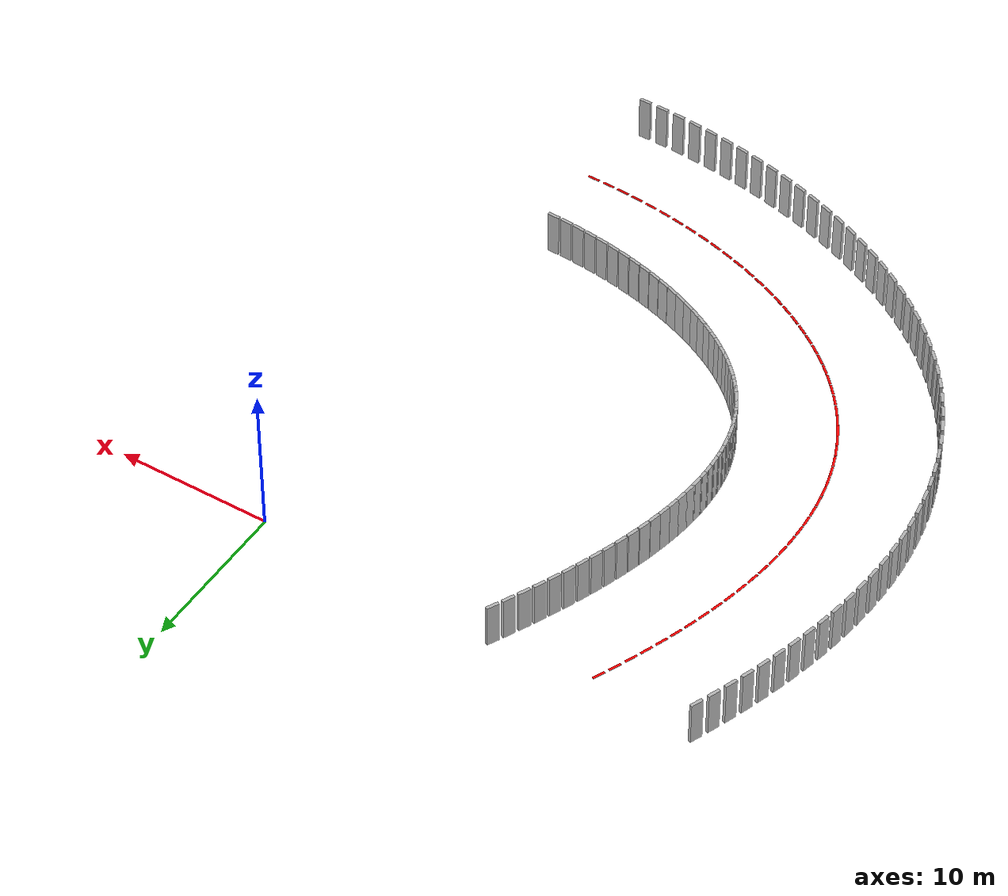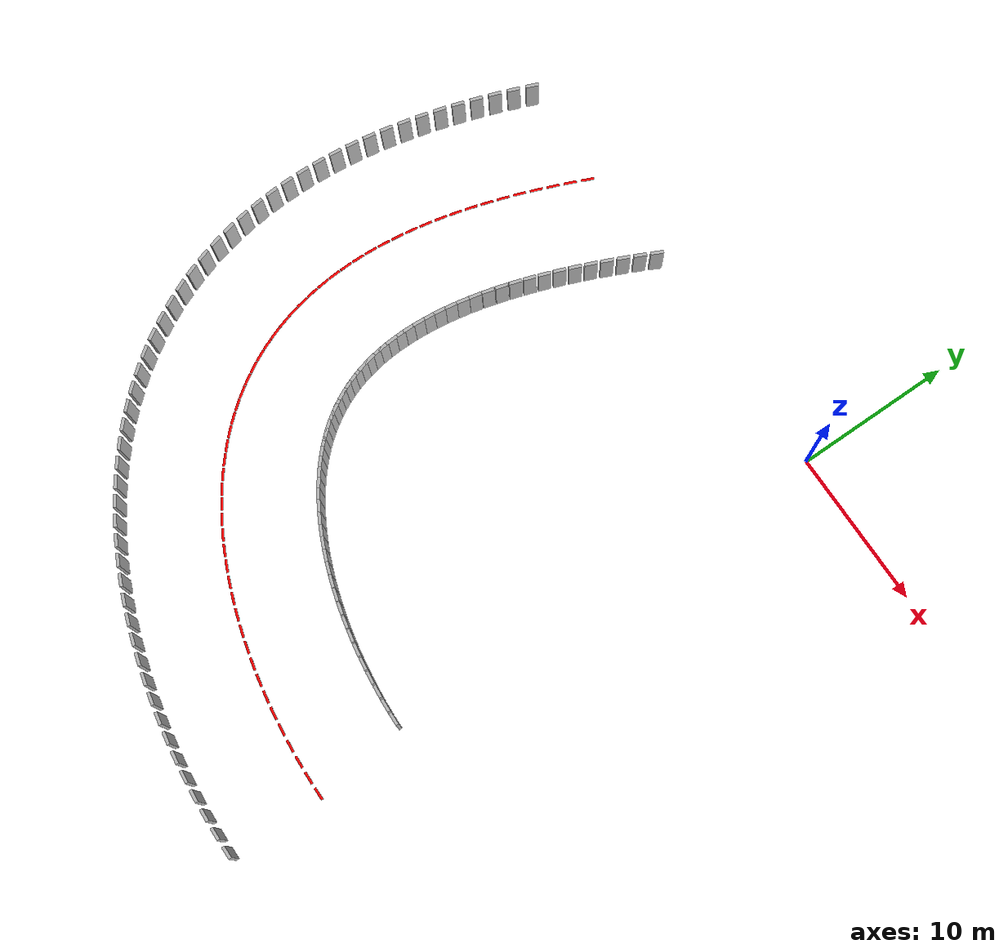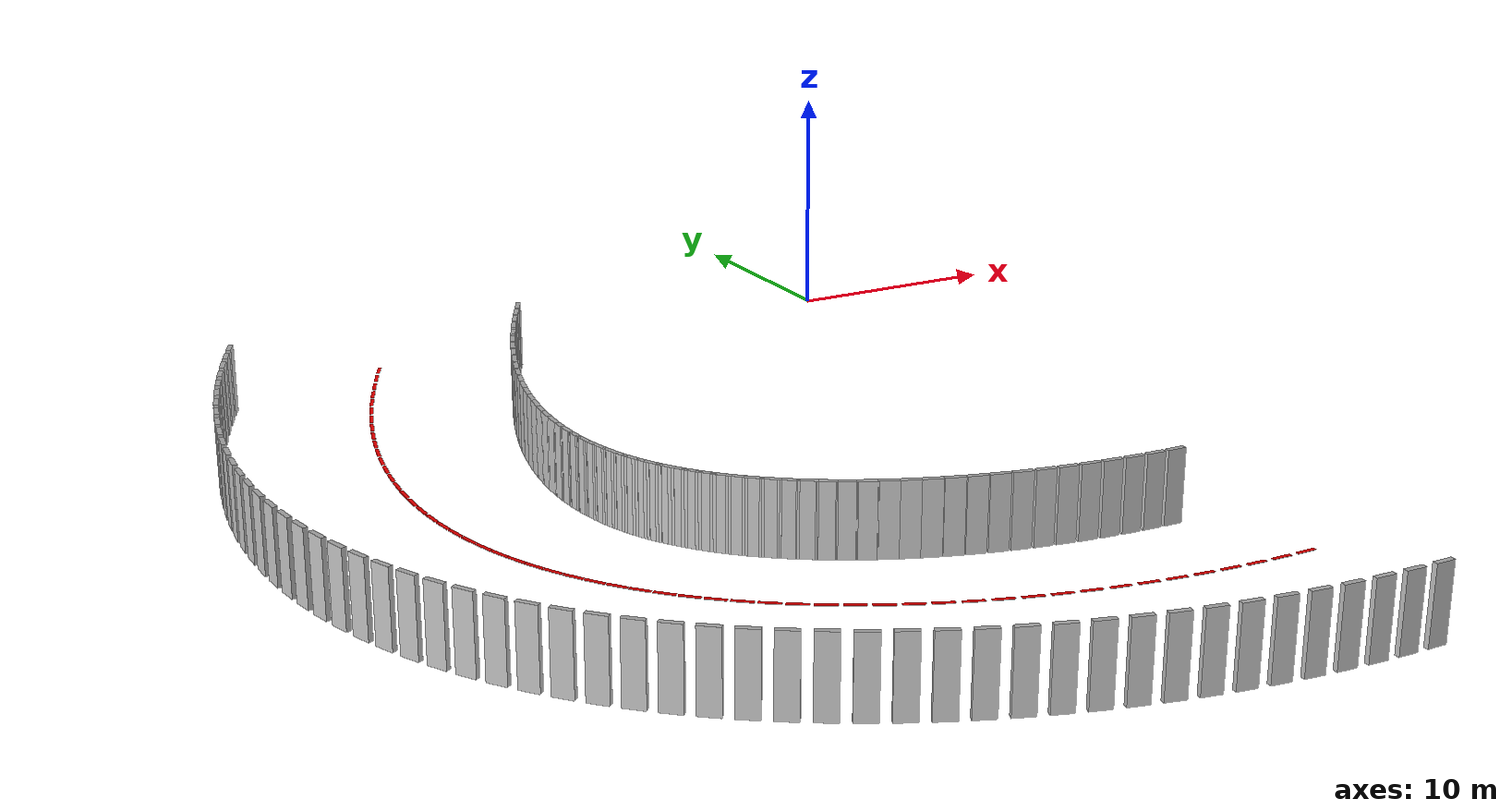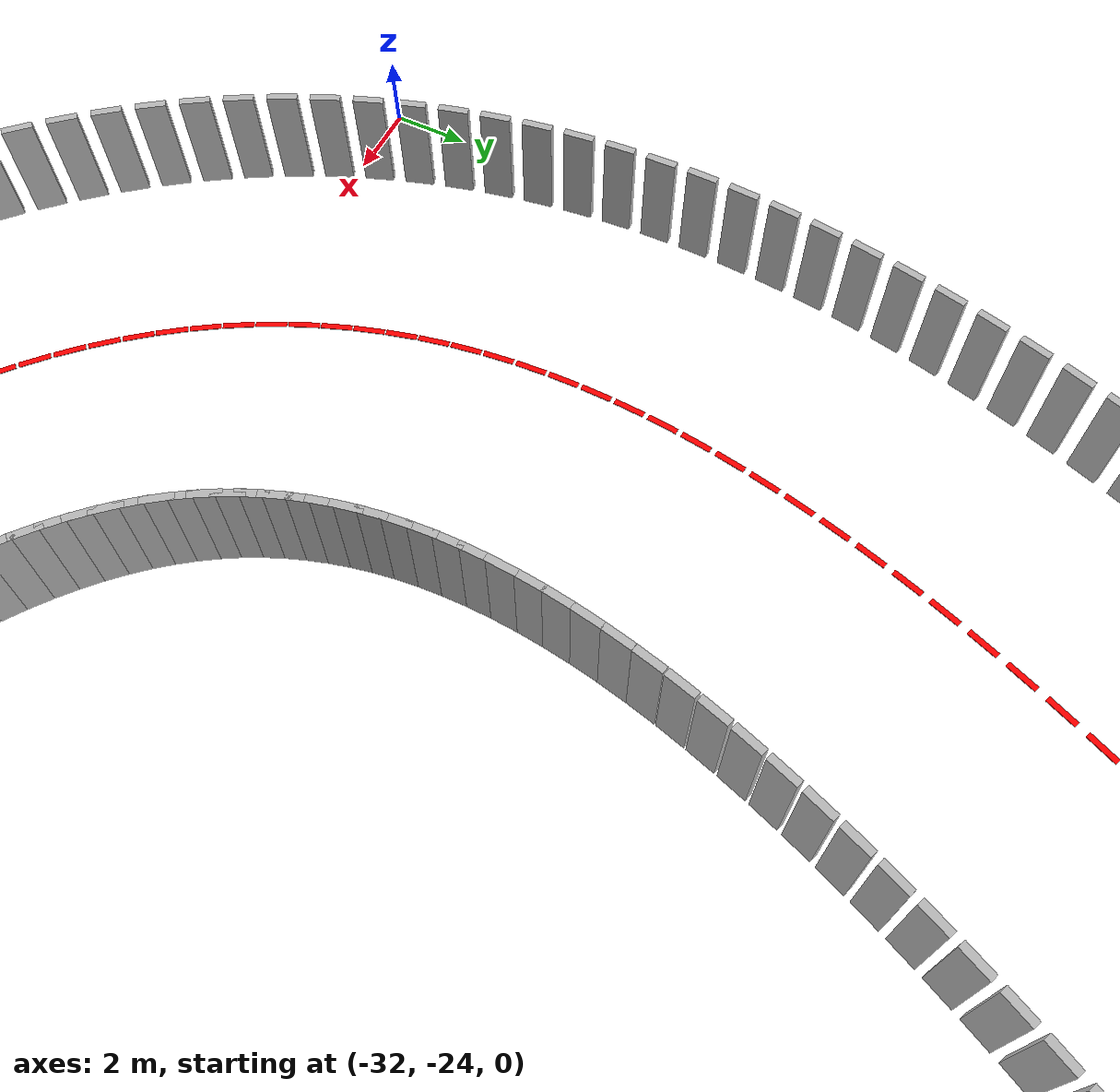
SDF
<sdf version="1.7">
 <model name="track_walls">
  <static>true</static>
  <link name="left_55">
   <pose>-0.312 -40.999 0.5 0 0 3.135</pose>
   <collision name="c"><geometry><box><size>0.8 0.2 3.0</size></box></geometry></collision>
   <visual name="v"><geometry><box><size>0.8 0.2 3.0</size></box></geometry></visual>
  </link>
  <link name="center_55">
   <pose>-0.273 -34.999 0.010 0 0 3.135</pose>
   <visual name="v">
    <geometry><box><size>0.8 0.15 0.02</size></box></geometry>
    <material><ambient>1 0 0 1</ambient><diffuse>1 0 0 1</diffuse></material>
   </visual>
  </link>
  <link name="left_56">
   <pose>-1.560 -40.974 0.5 0 0 3.109</pose>
   <collision name="c"><geometry><box><size>0.8 0.2 3.0</size></box></geometry></collision>
   <visual name="v"><geometry><box><size>0.8 0.2 3.0</size></box></geometry></visual>
  </link>
  <link name="right_56">
   <pose>-1.164 -28.981 0.5 0 0 3.109</pose>
   <collision name="c"><geometry><box><size>0.8 0.2 3.0</size></box></geometry></collision>
   <visual name="v"><geometry><box><size>0.8 0.2 3.0</size></box></geometry></visual>
  </link>
  <link name="center_56">
   <pose>-1.362 -34.977 0.010 0 0 3.109</pose>
   <visual name="v">
    <geometry><box><size>0.8 0.15 0.02</size></box></geometry>
    <material><ambient>1 0 0 1</ambient><diffuse>1 0 0 1</diffuse></material>
   </visual>
  </link>
  <link name="left_57">
   <pose>-2.807 -40.916 0.5 0 0 3.082</pose>
   <collision name="c"><geometry><box><size>0.8 0.2 3.0</size></box></geometry></collision>
   <visual name="v"><geometry><box><size>0.8 0.2 3.0</size></box></geometry></visual>
  </link>
  <link name="right_57">
   <pose>-2.092 -28.938 0.5 0 0 3.082</pose>
   <collision name="c"><geometry><box><size>0.8 0.2 3.0</size></box></geometry></collision>
   <visual name="v"><geometry><box><size>0.8 0.2 3.0</size></box></geometry></visual>
  </link>
  <link name="center_57">
   <pose>-2.449 -34.927 0.010 0 0 3.082</pose>
   <visual name="v">
    <geometry><box><size>0.8 0.15 0.02</size></box></geometry>
    <material><ambient>1 0 0 1</ambient><diffuse>1 0 0 1</diffuse></material>
   </visual>
  </link>
  <link name="left_58">
   <pose>-4.049 -40.826 0.5 0 0 3.055</pose>
   <collision name="c"><geometry><box><size>0.8 0.2 3.0</size></box></geometry></collision>
   <visual name="v"><geometry><box><size>0.8 0.2 3.0</size></box></geometry></visual>
  </link>
  <link name="right_58">
   <pose>-3.014 -28.870 0.5 0 0 3.055</pose>
   <collision name="c"><geometry><box><size>0.8 0.2 3.0</size></box></geometry></collision>
   <visual name="v"><geometry><box><size>0.8 0.2 3.0</size></box></geometry></visual>
  </link>
  <link name="center_58">
   <pose>-3.532 -34.848 0.010 0 0 3.055</pose>
   <visual name="v">
    <geometry><box><size>0.8 0.15 0.02</size></box></geometry>
    <material><ambient>1 0 0 1</ambient><diffuse>1 0 0 1</diffuse></material>
   </visual>
  </link>
  <link name="left_59">
   <pose>-5.287 -40.702 0.5 0 0 3.028</pose>
   <collision name="c"><geometry><box><size>0.8 0.2 3.0</size></box></geometry></collision>
   <visual name="v"><geometry><box><size>0.8 0.2 3.0</size></box></geometry></visual>
  </link>
  <link name="right_59">
   <pose>-3.928 -28.779 0.5 0 0 3.028</pose>
   <collision name="c"><geometry><box><size>0.8 0.2 3.0</size></box></geometry></collision>
   <visual name="v"><geometry><box><size>0.8 0.2 3.0</size></box></geometry></visual>
  </link>
  <link name="center_59">
   <pose>-4.608 -34.740 0.010 0 0 3.028</pose>
   <visual name="v">
    <geometry><box><size>0.8 0.15 0.02</size></box></geometry>
    <material><ambient>1 0 0 1</ambient><diffuse>1 0 0 1</diffuse></material>
   </visual>
  </link>
  <link name="left_60">
   <pose>-6.518 -40.544 0.5 0 0 3.001</pose>
   <collision name="c"><geometry><box><size>0.8 0.2 3.0</size></box></geometry></collision>
   <visual name="v"><geometry><box><size>0.8 0.2 3.0</size></box></geometry></visual>
  </link>
  <link name="right_60">
   <pose>-4.832 -28.663 0.5 0 0 3.001</pose>
   <collision name="c"><geometry><box><size>0.8 0.2 3.0</size></box></geometry></collision>
   <visual name="v"><geometry><box><size>0.8 0.2 3.0</size></box></geometry></visual>
  </link>
  <link name="center_60">
   <pose>-5.675 -34.604 0.010 0 0 3.001</pose>
   <visual name="v">
    <geometry><box><size>0.8 0.15 0.02</size></box></geometry>
    <material><ambient>1 0 0 1</ambient><diffuse>1 0 0 1</diffuse></material>
   </visual>
  </link>
  <link name="left_61">
   <pose>-7.740 -40.354 0.5 0 0 2.973</pose>
   <collision name="c"><geometry><box><size>0.8 0.2 3.0</size></box></geometry></collision>
   <visual name="v"><geometry><box><size>0.8 0.2 3.0</size></box></geometry></visual>
  </link>
  <link name="right_61">
   <pose>-5.724 -28.524 0.5 0 0 2.973</pose>
   <collision name="c"><geometry><box><size>0.8 0.2 3.0</size></box></geometry></collision>
   <visual name="v"><geometry><box><size>0.8 0.2 3.0</size></box></geometry></visual>
  </link>
  <link name="center_61">
   <pose>-6.732 -34.439 0.010 0 0 2.973</pose>
   <visual name="v">
    <geometry><box><size>0.8 0.15 0.02</size></box></geometry>
    <material><ambient>1 0 0 1</ambient><diffuse>1 0 0 1</diffuse></material>
   </visual>
  </link>
  <link name="left_62">
   <pose>-8.952 -40.129 0.5 0 0 2.944</pose>
   <collision name="c"><geometry><box><size>0.8 0.2 3.0</size></box></geometry></collision>
   <visual name="v"><geometry><box><size>0.8 0.2 3.0</size></box></geometry></visual>
  </link>
  <link name="right_62">
   <pose>-6.600 -28.362 0.5 0 0 2.944</pose>
   <collision name="c"><geometry><box><size>0.8 0.2 3.0</size></box></geometry></collision>
   <visual name="v"><geometry><box><size>0.8 0.2 3.0</size></box></geometry></visual>
  </link>
  <link name="center_62">
   <pose>-7.776 -34.246 0.010 0 0 2.944</pose>
   <visual name="v">
    <geometry><box><size>0.8 0.15 0.02</size></box></geometry>
    <material><ambient>1 0 0 1</ambient><diffuse>1 0 0 1</diffuse></material>
   </visual>
  </link>
  <link name="left_63">
   <pose>-10.153 -39.871 0.5 0 0 2.915</pose>
   <collision name="c"><geometry><box><size>0.8 0.2 3.0</size></box></geometry></collision>
   <visual name="v"><geometry><box><size>0.8 0.2 3.0</size></box></geometry></visual>
  </link>
  <link name="right_63">
   <pose>-7.459 -28.177 0.5 0 0 2.915</pose>
   <collision name="c"><geometry><box><size>0.8 0.2 3.0</size></box></geometry></collision>
   <visual name="v"><geometry><box><size>0.8 0.2 3.0</size></box></geometry></visual>
  </link>
  <link name="center_63">
   <pose>-8.806 -34.024 0.010 0 0 2.915</pose>
   <visual name="v">
    <geometry><box><size>0.8 0.15 0.02</size></box></geometry>
    <material><ambient>1 0 0 1</ambient><diffuse>1 0 0 1</diffuse></material>
   </visual>
  </link>
  <link name="left_64">
   <pose>-11.341 -39.579 0.5 0 0 2.885</pose>
   <collision name="c"><geometry><box><size>0.8 0.2 3.0</size></box></geometry></collision>
   <visual name="v"><geometry><box><size>0.8 0.2 3.0</size></box></geometry></visual>
  </link>
  <link name="right_64">
   <pose>-8.299 -27.971 0.5 0 0 2.885</pose>
   <collision name="c"><geometry><box><size>0.8 0.2 3.0</size></box></geometry></collision>
   <visual name="v"><geometry><box><size>0.8 0.2 3.0</size></box></geometry></visual>
  </link>
  <link name="center_64">
   <pose>-9.820 -33.775 0.010 0 0 2.885</pose>
   <visual name="v">
    <geometry><box><size>0.8 0.15 0.02</size></box></geometry>
    <material><ambient>1 0 0 1</ambient><diffuse>1 0 0 1</diffuse></material>
   </visual>
  </link>
  <link name="left_65">
   <pose>-12.514 -39.252 0.5 0 0 2.855</pose>
   <collision name="c"><geometry><box><size>0.8 0.2 3.0</size></box></geometry></collision>
   <visual name="v"><geometry><box><size>0.8 0.2 3.0</size></box></geometry></visual>
  </link>
  <link name="right_65">
   <pose>-9.116 -27.743 0.5 0 0 2.855</pose>
   <collision name="c"><geometry><box><size>0.8 0.2 3.0</size></box></geometry></collision>
   <visual name="v"><geometry><box><size>0.8 0.2 3.0</size></box></geometry></visual>
  </link>
  <link name="center_65">
   <pose>-10.815 -33.497 0.010 0 0 2.855</pose>
   <visual name="v">
    <geometry><box><size>0.8 0.15 0.02</size></box></geometry>
    <material><ambient>1 0 0 1</ambient><diffuse>1 0 0 1</diffuse></material>
   </visual>
  </link>
  <link name="left_66">
   <pose>-13.672 -38.890 0.5 0 0 2.823</pose>
   <collision name="c"><geometry><box><size>0.8 0.2 3.0</size></box></geometry></collision>
   <visual name="v"><geometry><box><size>0.8 0.2 3.0</size></box></geometry></visual>
  </link>
  <link name="right_66">
   <pose>-9.911 -27.495 0.5 0 0 2.823</pose>
   <collision name="c"><geometry><box><size>0.8 0.2 3.0</size></box></geometry></collision>
   <visual name="v"><geometry><box><size>0.8 0.2 3.0</size></box></geometry></visual>
  </link>
  <link name="center_66">
   <pose>-11.791 -33.193 0.010 0 0 2.823</pose>
   <visual name="v">
    <geometry><box><size>0.8 0.15 0.02</size></box></geometry>
    <material><ambient>1 0 0 1</ambient><diffuse>1 0 0 1</diffuse></material>
   </visual>
  </link>
  <link name="left_67">
   <pose>-14.811 -38.494 0.5 0 0 2.790</pose>
   <collision name="c"><geometry><box><size>0.8 0.2 3.0</size></box></geometry></collision>
   <visual name="v"><geometry><box><size>0.8 0.2 3.0</size></box></geometry></visual>
  </link>
  <link name="right_67">
   <pose>-10.680 -27.227 0.5 0 0 2.790</pose>
   <collision name="c"><geometry><box><size>0.8 0.2 3.0</size></box></geometry></collision>
   <visual name="v"><geometry><box><size>0.8 0.2 3.0</size></box></geometry></visual>
  </link>
  <link name="center_67">
   <pose>-12.745 -32.861 0.010 0 0 2.790</pose>
   <visual name="v">
    <geometry><box><size>0.8 0.15 0.02</size></box></geometry>
    <material><ambient>1 0 0 1</ambient><diffuse>1 0 0 1</diffuse></material>
   </visual>
  </link>
  <link name="left_68">
   <pose>-15.932 -38.061 0.5 0 0 2.756</pose>
   <collision name="c"><geometry><box><size>0.8 0.2 3.0</size></box></geometry></collision>
   <visual name="v"><geometry><box><size>0.8 0.2 3.0</size></box></geometry></visual>
  </link>
  <link name="right_68">
   <pose>-11.421 -26.941 0.5 0 0 2.756</pose>
   <collision name="c"><geometry><box><size>0.8 0.2 3.0</size></box></geometry></collision>
   <visual name="v"><geometry><box><size>0.8 0.2 3.0</size></box></geometry></visual>
  </link>
  <link name="center_68">
   <pose>-13.676 -32.501 0.010 0 0 2.756</pose>
   <visual name="v">
    <geometry><box><size>0.8 0.15 0.02</size></box></geometry>
    <material><ambient>1 0 0 1</ambient><diffuse>1 0 0 1</diffuse></material>
   </visual>
  </link>
  <link name="left_69">
   <pose>-17.031 -37.593 0.5 0 0 2.721</pose>
   <collision name="c"><geometry><box><size>0.8 0.2 3.0</size></box></geometry></collision>
   <visual name="v"><geometry><box><size>0.8 0.2 3.0</size></box></geometry></visual>
  </link>
  <link name="right_69">
   <pose>-12.134 -26.638 0.5 0 0 2.721</pose>
   <collision name="c"><geometry><box><size>0.8 0.2 3.0</size></box></geometry></collision>
   <visual name="v"><geometry><box><size>0.8 0.2 3.0</size></box></geometry></visual>
  </link>
  <link name="center_69">
   <pose>-14.582 -32.115 0.010 0 0 2.721</pose>
   <visual name="v">
    <geometry><box><size>0.8 0.15 0.02</size></box></geometry>
    <material><ambient>1 0 0 1</ambient><diffuse>1 0 0 1</diffuse></material>
   </visual>
  </link>
  <link name="left_70">
   <pose>-18.108 -37.088 0.5 0 0 2.685</pose>
   <collision name="c"><geometry><box><size>0.8 0.2 3.0</size></box></geometry></collision>
   <visual name="v"><geometry><box><size>0.8 0.2 3.0</size></box></geometry></visual>
  </link>
  <link name="right_70">
   <pose>-12.816 -26.318 0.5 0 0 2.685</pose>
   <collision name="c"><geometry><box><size>0.8 0.2 3.0</size></box></geometry></collision>
   <visual name="v"><geometry><box><size>0.8 0.2 3.0</size></box></geometry></visual>
  </link>
  <link name="center_70">
   <pose>-15.462 -31.703 0.010 0 0 2.685</pose>
   <visual name="v">
    <geometry><box><size>0.8 0.15 0.02</size></box></geometry>
    <material><ambient>1 0 0 1</ambient><diffuse>1 0 0 1</diffuse></material>
   </visual>
  </link>
  <link name="left_71">
   <pose>-19.161 -36.546 0.5 0 0 2.647</pose>
   <collision name="c"><geometry><box><size>0.8 0.2 3.0</size></box></geometry></collision>
   <visual name="v"><geometry><box><size>0.8 0.2 3.0</size></box></geometry></visual>
  </link>
  <link name="right_71">
   <pose>-13.467 -25.983 0.5 0 0 2.647</pose>
   <collision name="c"><geometry><box><size>0.8 0.2 3.0</size></box></geometry></collision>
   <visual name="v"><geometry><box><size>0.8 0.2 3.0</size></box></geometry></visual>
  </link>
  <link name="center_71">
   <pose>-16.314 -31.265 0.010 0 0 2.647</pose>
   <visual name="v">
    <geometry><box><size>0.8 0.15 0.02</size></box></geometry>
    <material><ambient>1 0 0 1</ambient><diffuse>1 0 0 1</diffuse></material>
   </visual>
  </link>
  <link name="left_72">
   <pose>-20.188 -35.966 0.5 0 0 2.608</pose>
   <collision name="c"><geometry><box><size>0.8 0.2 3.0</size></box></geometry></collision>
   <visual name="v"><geometry><box><size>0.8 0.2 3.0</size></box></geometry></visual>
  </link>
  <link name="right_72">
   <pose>-14.084 -25.635 0.5 0 0 2.608</pose>
   <collision name="c"><geometry><box><size>0.8 0.2 3.0</size></box></geometry></collision>
   <visual name="v"><geometry><box><size>0.8 0.2 3.0</size></box></geometry></visual>
  </link>
  <link name="center_72">
   <pose>-17.136 -30.800 0.010 0 0 2.608</pose>
   <visual name="v">
    <geometry><box><size>0.8 0.15 0.02</size></box></geometry>
    <material><ambient>1 0 0 1</ambient><diffuse>1 0 0 1</diffuse></material>
   </visual>
  </link>
  <link name="left_73">
   <pose>-21.187 -35.349 0.5 0 0 2.567</pose>
   <collision name="c"><geometry><box><size>0.8 0.2 3.0</size></box></geometry></collision>
   <visual name="v"><geometry><box><size>0.8 0.2 3.0</size></box></geometry></visual>
  </link>
  <link name="right_73">
   <pose>-14.669 -25.273 0.5 0 0 2.567</pose>
   <collision name="c"><geometry><box><size>0.8 0.2 3.0</size></box></geometry></collision>
   <visual name="v"><geometry><box><size>0.8 0.2 3.0</size></box></geometry></visual>
  </link>
  <link name="center_73">
   <pose>-17.928 -30.311 0.010 0 0 2.567</pose>
   <visual name="v">
    <geometry><box><size>0.8 0.15 0.02</size></box></geometry>
    <material><ambient>1 0 0 1</ambient><diffuse>1 0 0 1</diffuse></material>
   </visual>
  </link>
  <link name="left_74">
   <pose>-22.157 -34.692 0.5 0 0 2.525</pose>
   <collision name="c"><geometry><box><size>0.8 0.2 3.0</size></box></geometry></collision>
   <visual name="v"><geometry><box><size>0.8 0.2 3.0</size></box></geometry></visual>
  </link>
  <link name="right_74">
   <pose>-15.220 -24.901 0.5 0 0 2.525</pose>
   <collision name="c"><geometry><box><size>0.8 0.2 3.0</size></box></geometry></collision>
   <visual name="v"><geometry><box><size>0.8 0.2 3.0</size></box></geometry></visual>
  </link>
  <link name="center_74">
   <pose>-18.688 -29.796 0.010 0 0 2.525</pose>
   <visual name="v">
    <geometry><box><size>0.8 0.15 0.02</size></box></geometry>
    <material><ambient>1 0 0 1</ambient><diffuse>1 0 0 1</diffuse></material>
   </visual>
  </link>
  <link name="left_75">
   <pose>-23.094 -33.997 0.5 0 0 2.482</pose>
   <collision name="c"><geometry><box><size>0.8 0.2 3.0</size></box></geometry></collision>
   <visual name="v"><geometry><box><size>0.8 0.2 3.0</size></box></geometry></visual>
  </link>
  <link name="right_75">
   <pose>-15.736 -24.518 0.5 0 0 2.482</pose>
   <collision name="c"><geometry><box><size>0.8 0.2 3.0</size></box></geometry></collision>
   <visual name="v"><geometry><box><size>0.8 0.2 3.0</size></box></geometry></visual>
  </link>
  <link name="center_75">
   <pose>-19.415 -29.257 0.010 0 0 2.482</pose>
   <visual name="v">
    <geometry><box><size>0.8 0.15 0.02</size></box></geometry>
    <material><ambient>1 0 0 1</ambient><diffuse>1 0 0 1</diffuse></material>
   </visual>
  </link>
  <link name="left_76">
   <pose>-23.997 -33.263 0.5 0 0 2.436</pose>
   <collision name="c"><geometry><box><size>0.8 0.2 3.0</size></box></geometry></collision>
   <visual name="v"><geometry><box><size>0.8 0.2 3.0</size></box></geometry></visual>
  </link>
  <link name="right_76">
   <pose>-16.219 -24.126 0.5 0 0 2.436</pose>
   <collision name="c"><geometry><box><size>0.8 0.2 3.0</size></box></geometry></collision>
   <visual name="v"><geometry><box><size>0.8 0.2 3.0</size></box></geometry></visual>
  </link>
  <link name="center_76">
   <pose>-20.108 -28.694 0.010 0 0 2.436</pose>
   <visual name="v">
    <geometry><box><size>0.8 0.15 0.02</size></box></geometry>
    <material><ambient>1 0 0 1</ambient><diffuse>1 0 0 1</diffuse></material>
   </visual>
  </link>
  <link name="left_77">
   <pose>-24.864 -32.490 0.5 0 0 2.390</pose>
   <collision name="c"><geometry><box><size>0.8 0.2 3.0</size></box></geometry></collision>
   <visual name="v"><geometry><box><size>0.8 0.2 3.0</size></box></geometry></visual>
  </link>
  <link name="right_77">
   <pose>-16.668 -23.725 0.5 0 0 2.390</pose>
   <collision name="c"><geometry><box><size>0.8 0.2 3.0</size></box></geometry></collision>
   <visual name="v"><geometry><box><size>0.8 0.2 3.0</size></box></geometry></visual>
  </link>
  <link name="center_77">
   <pose>-20.766 -28.108 0.010 0 0 2.390</pose>
   <visual name="v">
    <geometry><box><size>0.8 0.15 0.02</size></box></geometry>
    <material><ambient>1 0 0 1</ambient><diffuse>1 0 0 1</diffuse></material>
   </visual>
  </link>
  <link name="left_78">
   <pose>-25.691 -31.678 0.5 0 0 2.342</pose>
   <collision name="c"><geometry><box><size>0.8 0.2 3.0</size></box></geometry></collision>
   <visual name="v"><geometry><box><size>0.8 0.2 3.0</size></box></geometry></visual>
  </link>
  <link name="right_78">
   <pose>-17.084 -23.317 0.5 0 0 2.342</pose>
   <collision name="c"><geometry><box><size>0.8 0.2 3.0</size></box></geometry></collision>
   <visual name="v"><geometry><box><size>0.8 0.2 3.0</size></box></geometry></visual>
  </link>
  <link name="center_78">
   <pose>-21.388 -27.498 0.010 0 0 2.342</pose>
   <visual name="v">
    <geometry><box><size>0.8 0.15 0.02</size></box></geometry>
    <material><ambient>1 0 0 1</ambient><diffuse>1 0 0 1</diffuse></material>
   </visual>
  </link>
  <link name="left_79">
   <pose>-26.477 -30.829 0.5 0 0 2.292</pose>
   <collision name="c"><geometry><box><size>0.8 0.2 3.0</size></box></geometry></collision>
   <visual name="v"><geometry><box><size>0.8 0.2 3.0</size></box></geometry></visual>
  </link>
  <link name="right_79">
   <pose>-17.468 -22.902 0.5 0 0 2.292</pose>
   <collision name="c"><geometry><box><size>0.8 0.2 3.0</size></box></geometry></collision>
   <visual name="v"><geometry><box><size>0.8 0.2 3.0</size></box></geometry></visual>
  </link>
  <link name="center_79">
   <pose>-21.973 -26.865 0.010 0 0 2.292</pose>
   <visual name="v">
    <geometry><box><size>0.8 0.15 0.02</size></box></geometry>
    <material><ambient>1 0 0 1</ambient><diffuse>1 0 0 1</diffuse></material>
   </visual>
  </link>
  <link name="left_80">
   <pose>-27.219 -29.942 0.5 0 0 2.242</pose>
   <collision name="c"><geometry><box><size>0.8 0.2 3.0</size></box></geometry></collision>
   <visual name="v"><geometry><box><size>0.8 0.2 3.0</size></box></geometry></visual>
  </link>
  <link name="right_80">
   <pose>-17.822 -22.479 0.5 0 0 2.242</pose>
   <collision name="c"><geometry><box><size>0.8 0.2 3.0</size></box></geometry></collision>
   <visual name="v"><geometry><box><size>0.8 0.2 3.0</size></box></geometry></visual>
  </link>
  <link name="center_80">
   <pose>-22.520 -26.211 0.010 0 0 2.242</pose>
   <visual name="v">
    <geometry><box><size>0.8 0.15 0.02</size></box></geometry>
    <material><ambient>1 0 0 1</ambient><diffuse>1 0 0 1</diffuse></material>
   </visual>
  </link>
  <link name="left_81">
   <pose>-27.914 -29.020 0.5 0 0 2.191</pose>
   <collision name="c"><geometry><box><size>0.8 0.2 3.0</size></box></geometry></collision>
   <visual name="v"><geometry><box><size>0.8 0.2 3.0</size></box></geometry></visual>
  </link>
  <link name="right_81">
   <pose>-18.146 -22.049 0.5 0 0 2.191</pose>
   <collision name="c"><geometry><box><size>0.8 0.2 3.0</size></box></geometry></collision>
   <visual name="v"><geometry><box><size>0.8 0.2 3.0</size></box></geometry></visual>
  </link>
  <link name="center_81">
   <pose>-23.030 -25.535 0.010 0 0 2.191</pose>
   <visual name="v">
    <geometry><box><size>0.8 0.15 0.02</size></box></geometry>
    <material><ambient>1 0 0 1</ambient><diffuse>1 0 0 1</diffuse></material>
   </visual>
  </link>
  <link name="left_82">
   <pose>-28.559 -28.064 0.5 0 0 2.139</pose>
   <collision name="c"><geometry><box><size>0.8 0.2 3.0</size></box></geometry></collision>
   <visual name="v"><geometry><box><size>0.8 0.2 3.0</size></box></geometry></visual>
  </link>
  <link name="right_82">
   <pose>-18.441 -21.611 0.5 0 0 2.139</pose>
   <collision name="c"><geometry><box><size>0.8 0.2 3.0</size></box></geometry></collision>
   <visual name="v"><geometry><box><size>0.8 0.2 3.0</size></box></geometry></visual>
  </link>
  <link name="center_82">
   <pose>-23.500 -24.837 0.010 0 0 2.139</pose>
   <visual name="v">
    <geometry><box><size>0.8 0.15 0.02</size></box></geometry>
    <material><ambient>1 0 0 1</ambient><diffuse>1 0 0 1</diffuse></material>
   </visual>
  </link>
  <link name="left_83">
   <pose>-29.153 -27.076 0.5 0 0 2.086</pose>
   <collision name="c"><geometry><box><size>0.8 0.2 3.0</size></box></geometry></collision>
   <visual name="v"><geometry><box><size>0.8 0.2 3.0</size></box></geometry></visual>
  </link>
  <link name="right_83">
   <pose>-18.711 -21.164 0.5 0 0 2.086</pose>
   <collision name="c"><geometry><box><size>0.8 0.2 3.0</size></box></geometry></collision>
   <visual name="v"><geometry><box><size>0.8 0.2 3.0</size></box></geometry></visual>
  </link>
  <link name="center_83">
   <pose>-23.932 -24.120 0.010 0 0 2.086</pose>
   <visual name="v">
    <geometry><box><size>0.8 0.15 0.02</size></box></geometry>
    <material><ambient>1 0 0 1</ambient><diffuse>1 0 0 1</diffuse></material>
   </visual>
  </link>
  <link name="left_84">
   <pose>-29.694 -26.059 0.5 0 0 2.033</pose>
   <collision name="c"><geometry><box><size>0.8 0.2 3.0</size></box></geometry></collision>
   <visual name="v"><geometry><box><size>0.8 0.2 3.0</size></box></geometry></visual>
  </link>
  <link name="right_84">
   <pose>-18.954 -20.706 0.5 0 0 2.033</pose>
   <collision name="c"><geometry><box><size>0.8 0.2 3.0</size></box></geometry></collision>
   <visual name="v"><geometry><box><size>0.8 0.2 3.0</size></box></geometry></visual>
  </link>
  <link name="center_84">
   <pose>-24.324 -23.382 0.010 0 0 2.033</pose>
   <visual name="v">
    <geometry><box><size>0.8 0.15 0.02</size></box></geometry>
    <material><ambient>1 0 0 1</ambient><diffuse>1 0 0 1</diffuse></material>
   </visual>
  </link>
  <link name="left_85">
   <pose>-30.180 -25.015 0.5 0 0 1.980</pose>
   <collision name="c"><geometry><box><size>0.8 0.2 3.0</size></box></geometry></collision>
   <visual name="v"><geometry><box><size>0.8 0.2 3.0</size></box></geometry></visual>
  </link>
  <link name="right_85">
   <pose>-19.173 -20.236 0.5 0 0 1.980</pose>
   <collision name="c"><geometry><box><size>0.8 0.2 3.0</size></box></geometry></collision>
   <visual name="v"><geometry><box><size>0.8 0.2 3.0</size></box></geometry></visual>
  </link>
  <link name="center_85">
   <pose>-24.677 -22.626 0.010 0 0 1.980</pose>
   <visual name="v">
    <geometry><box><size>0.8 0.15 0.02</size></box></geometry>
    <material><ambient>1 0 0 1</ambient><diffuse>1 0 0 1</diffuse></material>
   </visual>
  </link>
  <link name="left_86">
   <pose>-30.610 -23.949 0.5 0 0 1.928</pose>
   <collision name="c"><geometry><box><size>0.8 0.2 3.0</size></box></geometry></collision>
   <visual name="v"><geometry><box><size>0.8 0.2 3.0</size></box></geometry></visual>
  </link>
  <link name="right_86">
   <pose>-19.368 -19.752 0.5 0 0 1.928</pose>
   <collision name="c"><geometry><box><size>0.8 0.2 3.0</size></box></geometry></collision>
   <visual name="v"><geometry><box><size>0.8 0.2 3.0</size></box></geometry></visual>
  </link>
  <link name="center_86">
   <pose>-24.989 -21.850 0.010 0 0 1.928</pose>
   <visual name="v">
    <geometry><box><size>0.8 0.15 0.02</size></box></geometry>
    <material><ambient>1 0 0 1</ambient><diffuse>1 0 0 1</diffuse></material>
   </visual>
  </link>
  <link name="left_87">
   <pose>-30.984 -22.862 0.5 0 0 1.876</pose>
   <collision name="c"><geometry><box><size>0.8 0.2 3.0</size></box></geometry></collision>
   <visual name="v"><geometry><box><size>0.8 0.2 3.0</size></box></geometry></visual>
  </link>
  <link name="right_87">
   <pose>-19.540 -19.252 0.5 0 0 1.876</pose>
   <collision name="c"><geometry><box><size>0.8 0.2 3.0</size></box></geometry></collision>
   <visual name="v"><geometry><box><size>0.8 0.2 3.0</size></box></geometry></visual>
  </link>
  <link name="center_87">
   <pose>-25.262 -21.057 0.010 0 0 1.876</pose>
   <visual name="v">
    <geometry><box><size>0.8 0.15 0.02</size></box></geometry>
    <material><ambient>1 0 0 1</ambient><diffuse>1 0 0 1</diffuse></material>
   </visual>
  </link>
  <link name="left_88">
   <pose>-31.302 -21.758 0.5 0 0 1.826</pose>
   <collision name="c"><geometry><box><size>0.8 0.2 3.0</size></box></geometry></collision>
   <visual name="v"><geometry><box><size>0.8 0.2 3.0</size></box></geometry></visual>
  </link>
  <link name="right_88">
   <pose>-19.689 -18.734 0.5 0 0 1.826</pose>
   <collision name="c"><geometry><box><size>0.8 0.2 3.0</size></box></geometry></collision>
   <visual name="v"><geometry><box><size>0.8 0.2 3.0</size></box></geometry></visual>
  </link>
  <link name="center_88">
   <pose>-25.495 -20.246 0.010 0 0 1.826</pose>
   <visual name="v">
    <geometry><box><size>0.8 0.15 0.02</size></box></geometry>
    <material><ambient>1 0 0 1</ambient><diffuse>1 0 0 1</diffuse></material>
   </visual>
  </link>
  <link name="left_89">
   <pose>-31.563 -20.641 0.5 0 0 1.776</pose>
   <collision name="c"><geometry><box><size>0.8 0.2 3.0</size></box></geometry></collision>
   <visual name="v"><geometry><box><size>0.8 0.2 3.0</size></box></geometry></visual>
  </link>
  <link name="right_89">
   <pose>-19.815 -18.197 0.5 0 0 1.776</pose>
   <collision name="c"><geometry><box><size>0.8 0.2 3.0</size></box></geometry></collision>
   <visual name="v"><geometry><box><size>0.8 0.2 3.0</size></box></geometry></visual>
  </link>
  <link name="center_89">
   <pose>-25.689 -19.419 0.010 0 0 1.776</pose>
   <visual name="v">
    <geometry><box><size>0.8 0.15 0.02</size></box></geometry>
    <material><ambient>1 0 0 1</ambient><diffuse>1 0 0 1</diffuse></material>
   </visual>
  </link>
  <link name="left_90">
   <pose>-31.769 -19.513 0.5 0 0 1.728</pose>
   <collision name="c"><geometry><box><size>0.8 0.2 3.0</size></box></geometry></collision>
   <visual name="v"><geometry><box><size>0.8 0.2 3.0</size></box></geometry></visual>
  </link>
  <link name="right_90">
   <pose>-19.917 -17.638 0.5 0 0 1.728</pose>
   <collision name="c"><geometry><box><size>0.8 0.2 3.0</size></box></geometry></collision>
   <visual name="v"><geometry><box><size>0.8 0.2 3.0</size></box></geometry></visual>
  </link>
  <link name="center_90">
   <pose>-25.843 -18.576 0.010 0 0 1.728</pose>
   <visual name="v">
    <geometry><box><size>0.8 0.15 0.02</size></box></geometry>
    <material><ambient>1 0 0 1</ambient><diffuse>1 0 0 1</diffuse></material>
   </visual>
  </link>
  <link name="left_91">
   <pose>-31.922 -18.377 0.5 0 0 1.681</pose>
   <collision name="c"><geometry><box><size>0.8 0.2 3.0</size></box></geometry></collision>
   <visual name="v"><geometry><box><size>0.8 0.2 3.0</size></box></geometry></visual>
  </link>
  <link name="right_91">
   <pose>-19.994 -17.057 0.5 0 0 1.681</pose>
   <collision name="c"><geometry><box><size>0.8 0.2 3.0</size></box></geometry></collision>
   <visual name="v"><geometry><box><size>0.8 0.2 3.0</size></box></geometry></visual>
  </link>
  <link name="center_91">
   <pose>-25.958 -17.717 0.010 0 0 1.681</pose>
   <visual name="v">
    <geometry><box><size>0.8 0.15 0.02</size></box></geometry>
    <material><ambient>1 0 0 1</ambient><diffuse>1 0 0 1</diffuse></material>
   </visual>
  </link>
  <link name="left_92">
   <pose>-32.022 -17.235 0.5 0 0 1.636</pose>
   <collision name="c"><geometry><box><size>0.8 0.2 3.0</size></box></geometry></collision>
   <visual name="v"><geometry><box><size>0.8 0.2 3.0</size></box></geometry></visual>
  </link>
  <link name="right_92">
   <pose>-20.047 -16.453 0.5 0 0 1.636</pose>
   <collision name="c"><geometry><box><size>0.8 0.2 3.0</size></box></geometry></collision>
   <visual name="v"><geometry><box><size>0.8 0.2 3.0</size></box></geometry></visual>
  </link>
  <link name="center_92">
   <pose>-26.035 -16.844 0.010 0 0 1.636</pose>
   <visual name="v">
    <geometry><box><size>0.8 0.15 0.02</size></box></geometry>
    <material><ambient>1 0 0 1</ambient><diffuse>1 0 0 1</diffuse></material>
   </visual>
  </link>
  <link name="left_93">
   <pose>-32.071 -16.089 0.5 0 0 1.593</pose>
   <collision name="c"><geometry><box><size>0.8 0.2 3.0</size></box></geometry></collision>
   <visual name="v"><geometry><box><size>0.8 0.2 3.0</size></box></geometry></visual>
  </link>
  <link name="right_93">
   <pose>-20.074 -15.825 0.5 0 0 1.593</pose>
   <collision name="c"><geometry><box><size>0.8 0.2 3.0</size></box></geometry></collision>
   <visual name="v"><geometry><box><size>0.8 0.2 3.0</size></box></geometry></visual>
  </link>
  <link name="center_93">
   <pose>-26.073 -15.957 0.010 0 0 1.593</pose>
   <visual name="v">
    <geometry><box><size>0.8 0.15 0.02</size></box></geometry>
    <material><ambient>1 0 0 1</ambient><diffuse>1 0 0 1</diffuse></material>
   </visual>
  </link>
  <link name="left_94">
   <pose>-32.073 -14.941 0.5 0 0 1.551</pose>
   <collision name="c"><geometry><box><size>0.8 0.2 3.0</size></box></geometry></collision>
   <visual name="v"><geometry><box><size>0.8 0.2 3.0</size></box></geometry></visual>
  </link>
  <link name="right_94">
   <pose>-20.075 -15.172 0.5 0 0 1.551</pose>
   <collision name="c"><geometry><box><size>0.8 0.2 3.0</size></box></geometry></collision>
   <visual name="v"><geometry><box><size>0.8 0.2 3.0</size></box></geometry></visual>
  </link>
  <link name="center_94">
   <pose>-26.074 -15.057 0.010 0 0 1.551</pose>
   <visual name="v">
    <geometry><box><size>0.8 0.15 0.02</size></box></geometry>
    <material><ambient>1 0 0 1</ambient><diffuse>1 0 0 1</diffuse></material>
   </visual>
  </link>
  <link name="left_95">
   <pose>-32.028 -13.792 0.5 0 0 1.512</pose>
   <collision name="c"><geometry><box><size>0.8 0.2 3.0</size></box></geometry></collision>
   <visual name="v"><geometry><box><size>0.8 0.2 3.0</size></box></geometry></visual>
  </link>
  <link name="right_95">
   <pose>-20.048 -14.496 0.5 0 0 1.512</pose>
   <collision name="c"><geometry><box><size>0.8 0.2 3.0</size></box></geometry></collision>
   <visual name="v"><geometry><box><size>0.8 0.2 3.0</size></box></geometry></visual>
  </link>
  <link name="center_95">
   <pose>-26.038 -14.144 0.010 0 0 1.512</pose>
   <visual name="v">
    <geometry><box><size>0.8 0.15 0.02</size></box></geometry>
    <material><ambient>1 0 0 1</ambient><diffuse>1 0 0 1</diffuse></material>
   </visual>
  </link>
  <link name="left_96">
   <pose>-31.938 -12.645 0.5 0 0 1.475</pose>
   <collision name="c"><geometry><box><size>0.8 0.2 3.0</size></box></geometry></collision>
   <visual name="v"><geometry><box><size>0.8 0.2 3.0</size></box></geometry></visual>
  </link>
  <link name="right_96">
   <pose>-19.994 -13.795 0.5 0 0 1.475</pose>
   <collision name="c"><geometry><box><size>0.8 0.2 3.0</size></box></geometry></collision>
   <visual name="v"><geometry><box><size>0.8 0.2 3.0</size></box></geometry></visual>
  </link>
  <link name="center_96">
   <pose>-25.966 -13.220 0.010 0 0 1.475</pose>
   <visual name="v">
    <geometry><box><size>0.8 0.15 0.02</size></box></geometry>
    <material><ambient>1 0 0 1</ambient><diffuse>1 0 0 1</diffuse></material>
   </visual>
  </link>
  <link name="left_97">
   <pose>-31.807 -11.499 0.5 0 0 1.439</pose>
   <collision name="c"><geometry><box><size>0.8 0.2 3.0</size></box></geometry></collision>
   <visual name="v"><geometry><box><size>0.8 0.2 3.0</size></box></geometry></visual>
  </link>
  <link name="right_97">
   <pose>-19.911 -13.071 0.5 0 0 1.439</pose>
   <collision name="c"><geometry><box><size>0.8 0.2 3.0</size></box></geometry></collision>
   <visual name="v"><geometry><box><size>0.8 0.2 3.0</size></box></geometry></visual>
  </link>
  <link name="center_97">
   <pose>-25.859 -12.285 0.010 0 0 1.439</pose>
   <visual name="v">
    <geometry><box><size>0.8 0.15 0.02</size></box></geometry>
    <material><ambient>1 0 0 1</ambient><diffuse>1 0 0 1</diffuse></material>
   </visual>
  </link>
  <link name="left_98">
   <pose>-31.636 -10.355 0.5 0 0 1.406</pose>
   <collision name="c"><geometry><box><size>0.8 0.2 3.0</size></box></geometry></collision>
   <visual name="v"><geometry><box><size>0.8 0.2 3.0</size></box></geometry></visual>
  </link>
  <link name="right_98">
   <pose>-19.799 -12.324 0.5 0 0 1.406</pose>
   <collision name="c"><geometry><box><size>0.8 0.2 3.0</size></box></geometry></collision>
   <visual name="v"><geometry><box><size>0.8 0.2 3.0</size></box></geometry></visual>
  </link>
  <link name="center_98">
   <pose>-25.718 -11.339 0.010 0 0 1.406</pose>
   <visual name="v">
    <geometry><box><size>0.8 0.15 0.02</size></box></geometry>
    <material><ambient>1 0 0 1</ambient><diffuse>1 0 0 1</diffuse></material>
   </visual>
  </link>
  <link name="left_99">
   <pose>-31.428 -9.214 0.5 0 0 1.374</pose>
   <collision name="c"><geometry><box><size>0.8 0.2 3.0</size></box></geometry></collision>
   <visual name="v"><geometry><box><size>0.8 0.2 3.0</size></box></geometry></visual>
  </link>
  <link name="right_99">
   <pose>-19.658 -11.556 0.5 0 0 1.374</pose>
   <collision name="c"><geometry><box><size>0.8 0.2 3.0</size></box></geometry></collision>
   <visual name="v"><geometry><box><size>0.8 0.2 3.0</size></box></geometry></visual>
  </link>
  <link name="center_99">
   <pose>-25.543 -10.385 0.010 0 0 1.374</pose>
   <visual name="v">
    <geometry><box><size>0.8 0.15 0.02</size></box></geometry>
    <material><ambient>1 0 0 1</ambient><diffuse>1 0 0 1</diffuse></material>
   </visual>
  </link>
  <link name="left_100">
   <pose>-31.183 -8.077 0.5 0 0 1.345</pose>
   <collision name="c"><geometry><box><size>0.8 0.2 3.0</size></box></geometry></collision>
   <visual name="v"><geometry><box><size>0.8 0.2 3.0</size></box></geometry></visual>
  </link>
  <link name="right_100">
   <pose>-19.489 -10.767 0.5 0 0 1.345</pose>
   <collision name="c"><geometry><box><size>0.8 0.2 3.0</size></box></geometry></collision>
   <visual name="v"><geometry><box><size>0.8 0.2 3.0</size></box></geometry></visual>
  </link>
  <link name="center_100">
   <pose>-25.336 -9.422 0.010 0 0 1.345</pose>
   <visual name="v">
    <geometry><box><size>0.8 0.15 0.02</size></box></geometry>
    <material><ambient>1 0 0 1</ambient><diffuse>1 0 0 1</diffuse></material>
   </visual>
  </link>
  <link name="left_101">
   <pose>-30.906 -6.944 0.5 0 0 1.317</pose>
   <collision name="c"><geometry><box><size>0.8 0.2 3.0</size></box></geometry></collision>
   <visual name="v"><geometry><box><size>0.8 0.2 3.0</size></box></geometry></visual>
  </link>
  <link name="right_101">
   <pose>-19.291 -9.959 0.5 0 0 1.317</pose>
   <collision name="c"><geometry><box><size>0.8 0.2 3.0</size></box></geometry></collision>
   <visual name="v"><geometry><box><size>0.8 0.2 3.0</size></box></geometry></visual>
  </link>
  <link name="center_101">
   <pose>-25.098 -8.451 0.010 0 0 1.317</pose>
   <visual name="v">
    <geometry><box><size>0.8 0.15 0.02</size></box></geometry>
    <material><ambient>1 0 0 1</ambient><diffuse>1 0 0 1</diffuse></material>
   </visual>
  </link>
  <link name="left_102">
   <pose>-30.596 -5.814 0.5 0 0 1.291</pose>
   <collision name="c"><geometry><box><size>0.8 0.2 3.0</size></box></geometry></collision>
   <visual name="v"><geometry><box><size>0.8 0.2 3.0</size></box></geometry></visual>
  </link>
  <link name="right_102">
   <pose>-19.064 -9.132 0.5 0 0 1.291</pose>
   <collision name="c"><geometry><box><size>0.8 0.2 3.0</size></box></geometry></collision>
   <visual name="v"><geometry><box><size>0.8 0.2 3.0</size></box></geometry></visual>
  </link>
  <link name="center_102">
   <pose>-24.830 -7.473 0.010 0 0 1.291</pose>
   <visual name="v">
    <geometry><box><size>0.8 0.15 0.02</size></box></geometry>
    <material><ambient>1 0 0 1</ambient><diffuse>1 0 0 1</diffuse></material>
   </visual>
  </link>
  <link name="left_103">
   <pose>-30.257 -4.689 0.5 0 0 1.266</pose>
   <collision name="c"><geometry><box><size>0.8 0.2 3.0</size></box></geometry></collision>
   <visual name="v"><geometry><box><size>0.8 0.2 3.0</size></box></geometry></visual>
  </link>
  <link name="right_103">
   <pose>-18.810 -8.289 0.5 0 0 1.266</pose>
   <collision name="c"><geometry><box><size>0.8 0.2 3.0</size></box></geometry></collision>
   <visual name="v"><geometry><box><size>0.8 0.2 3.0</size></box></geometry></visual>
  </link>
  <link name="center_103">
   <pose>-24.534 -6.489 0.010 0 0 1.266</pose>
   <visual name="v">
    <geometry><box><size>0.8 0.15 0.02</size></box></geometry>
    <material><ambient>1 0 0 1</ambient><diffuse>1 0 0 1</diffuse></material>
   </visual>
  </link>
  <link name="left_104">
   <pose>-29.891 -3.569 0.5 0 0 1.243</pose>
   <collision name="c"><geometry><box><size>0.8 0.2 3.0</size></box></geometry></collision>
   <visual name="v"><geometry><box><size>0.8 0.2 3.0</size></box></geometry></visual>
  </link>
  <link name="right_104">
   <pose>-18.529 -7.431 0.5 0 0 1.243</pose>
   <collision name="c"><geometry><box><size>0.8 0.2 3.0</size></box></geometry></collision>
   <visual name="v"><geometry><box><size>0.8 0.2 3.0</size></box></geometry></visual>
  </link>
  <link name="center_104">
   <pose>-24.210 -5.500 0.010 0 0 1.243</pose>
   <visual name="v">
    <geometry><box><size>0.8 0.15 0.02</size></box></geometry>
    <material><ambient>1 0 0 1</ambient><diffuse>1 0 0 1</diffuse></material>
   </visual>
  </link>
  <link name="left_105">
   <pose>-29.498 -2.454 0.5 0 0 1.222</pose>
   <collision name="c"><geometry><box><size>0.8 0.2 3.0</size></box></geometry></collision>
   <visual name="v"><geometry><box><size>0.8 0.2 3.0</size></box></geometry></visual>
  </link>
  <link name="right_105">
   <pose>-18.221 -6.558 0.5 0 0 1.222</pose>
   <collision name="c"><geometry><box><size>0.8 0.2 3.0</size></box></geometry></collision>
   <visual name="v"><geometry><box><size>0.8 0.2 3.0</size></box></geometry></visual>
  </link>
  <link name="center_105">
   <pose>-23.860 -4.506 0.010 0 0 1.222</pose>
   <visual name="v">
    <geometry><box><size>0.8 0.15 0.02</size></box></geometry>
    <material><ambient>1 0 0 1</ambient><diffuse>1 0 0 1</diffuse></material>
   </visual>
  </link>
  <link name="left_106">
   <pose>-29.081 -1.345 0.5 0 0 1.202</pose>
   <collision name="c"><geometry><box><size>0.8 0.2 3.0</size></box></geometry></collision>
   <visual name="v"><geometry><box><size>0.8 0.2 3.0</size></box></geometry></visual>
  </link>
  <link name="right_106">
   <pose>-17.889 -5.673 0.5 0 0 1.202</pose>
   <collision name="c"><geometry><box><size>0.8 0.2 3.0</size></box></geometry></collision>
   <visual name="v"><geometry><box><size>0.8 0.2 3.0</size></box></geometry></visual>
  </link>
  <link name="center_106">
   <pose>-23.485 -3.509 0.010 0 0 1.202</pose>
   <visual name="v">
    <geometry><box><size>0.8 0.15 0.02</size></box></geometry>
    <material><ambient>1 0 0 1</ambient><diffuse>1 0 0 1</diffuse></material>
   </visual>
  </link>
  <link name="left_107">
   <pose>-28.642 -0.240 0.5 0 0 1.183</pose>
   <collision name="c"><geometry><box><size>0.8 0.2 3.0</size></box></geometry></collision>
   <visual name="v"><geometry><box><size>0.8 0.2 3.0</size></box></geometry></visual>
  </link>
  <link name="right_107">
   <pose>-17.532 -4.776 0.5 0 0 1.183</pose>
   <collision name="c"><geometry><box><size>0.8 0.2 3.0</size></box></geometry></collision>
   <visual name="v"><geometry><box><size>0.8 0.2 3.0</size></box></geometry></visual>
  </link>
  <link name="center_107">
   <pose>-23.087 -2.508 0.010 0 0 1.183</pose>
   <visual name="v">
    <geometry><box><size>0.8 0.15 0.02</size></box></geometry>
    <material><ambient>1 0 0 1</ambient><diffuse>1 0 0 1</diffuse></material>
   </visual>
  </link>
  <link name="right_108">
   <pose>-17.153 -3.870 0.5 0 0 1.166</pose>
   <collision name="c"><geometry><box><size>0.8 0.2 3.0</size></box></geometry></collision>
   <visual name="v"><geometry><box><size>0.8 0.2 3.0</size></box></geometry></visual>
  </link>
  <link name="center_108">
   <pose>-22.667 -1.506 0.010 0 0 1.166</pose>
   <visual name="v">
    <geometry><box><size>0.8 0.15 0.02</size></box></geometry>
    <material><ambient>1 0 0 1</ambient><diffuse>1 0 0 1</diffuse></material>
   </visual>
  </link>
  <link name="right_109">
   <pose>-16.751 -2.954 0.5 0 0 1.150</pose>
   <collision name="c"><geometry><box><size>0.8 0.2 3.0</size></box></geometry></collision>
   <visual name="v"><geometry><box><size>0.8 0.2 3.0</size></box></geometry></visual>
  </link>
  <link name="center_109">
   <pose>-22.227 -0.502 0.010 0 0 1.150</pose>
   <visual name="v">
    <geometry><box><size>0.8 0.15 0.02</size></box></geometry>
    <material><ambient>1 0 0 1</ambient><diffuse>1 0 0 1</diffuse></material>
   </visual>
  </link>
  <link name="right_110">
   <pose>-16.329 -2.032 0.5 0 0 1.135</pose>
   <collision name="c"><geometry><box><size>0.8 0.2 3.0</size></box></geometry></collision>
   <visual name="v"><geometry><box><size>0.8 0.2 3.0</size></box></geometry></visual>
  </link>
  <link name="right_111">
   <pose>-15.889 -1.103 0.5 0 0 1.121</pose>
   <collision name="c"><geometry><box><size>0.8 0.2 3.0</size></box></geometry></collision>
   <visual name="v"><geometry><box><size>0.8 0.2 3.0</size></box></geometry></visual>
  </link>
  <link name="right_112">
   <pose>-15.430 -0.169 0.5 0 0 1.108</pose>
   <collision name="c"><geometry><box><size>0.8 0.2 3.0</size></box></geometry></collision>
   <visual name="v"><geometry><box><size>0.8 0.2 3.0</size></box></geometry></visual>
  </link>
 </model>
</sdf>
